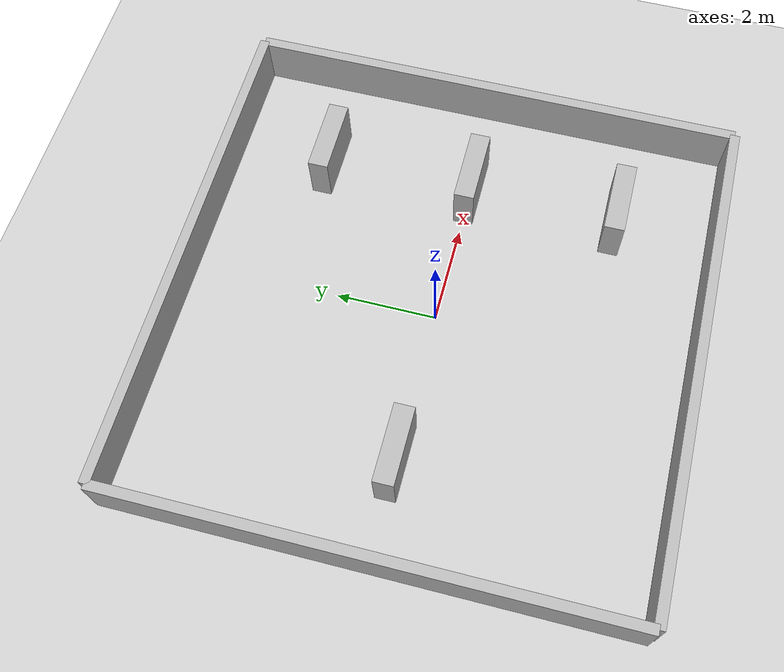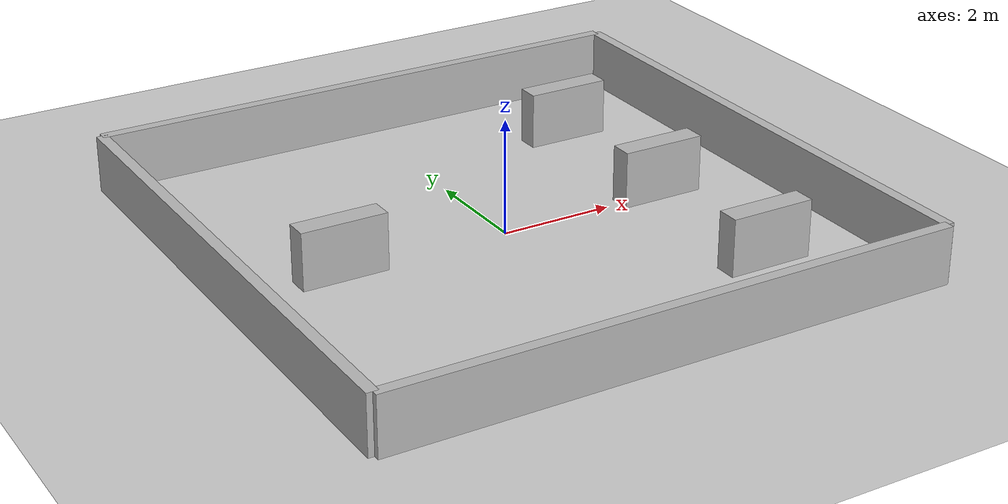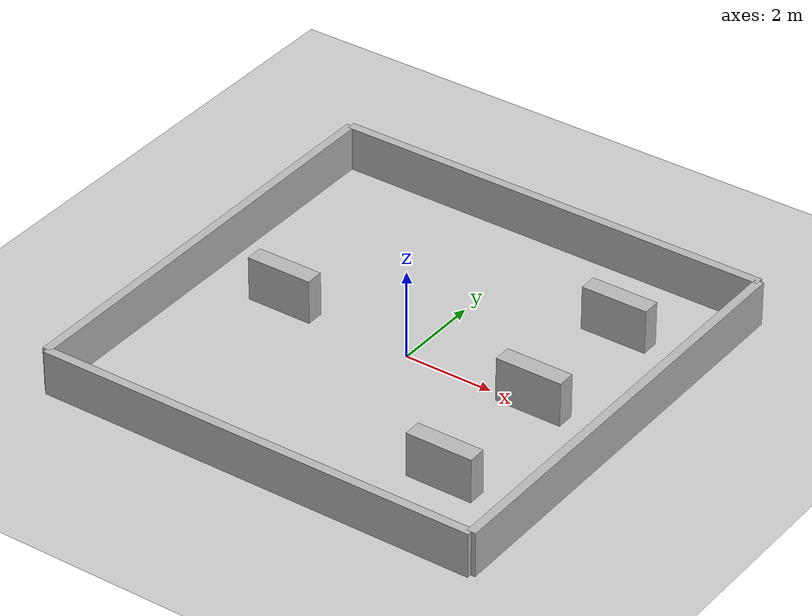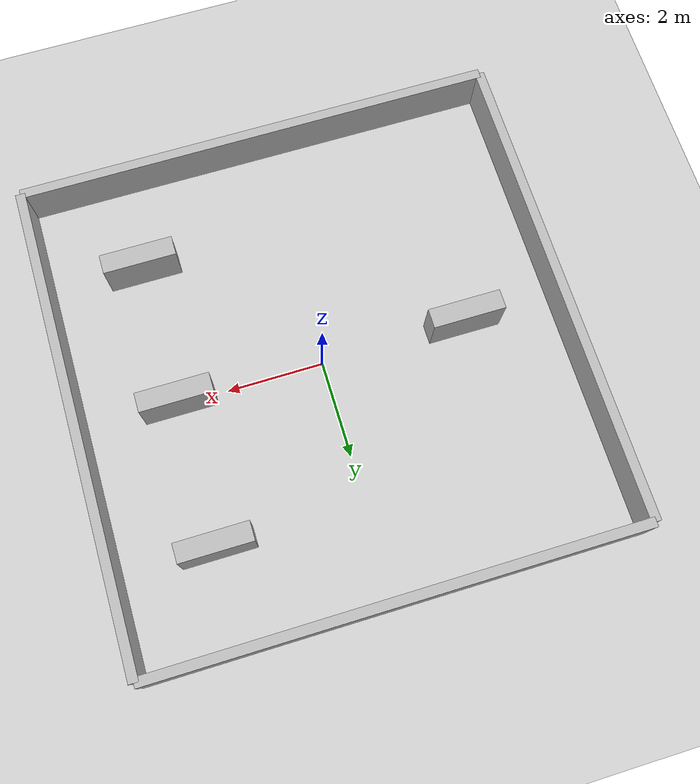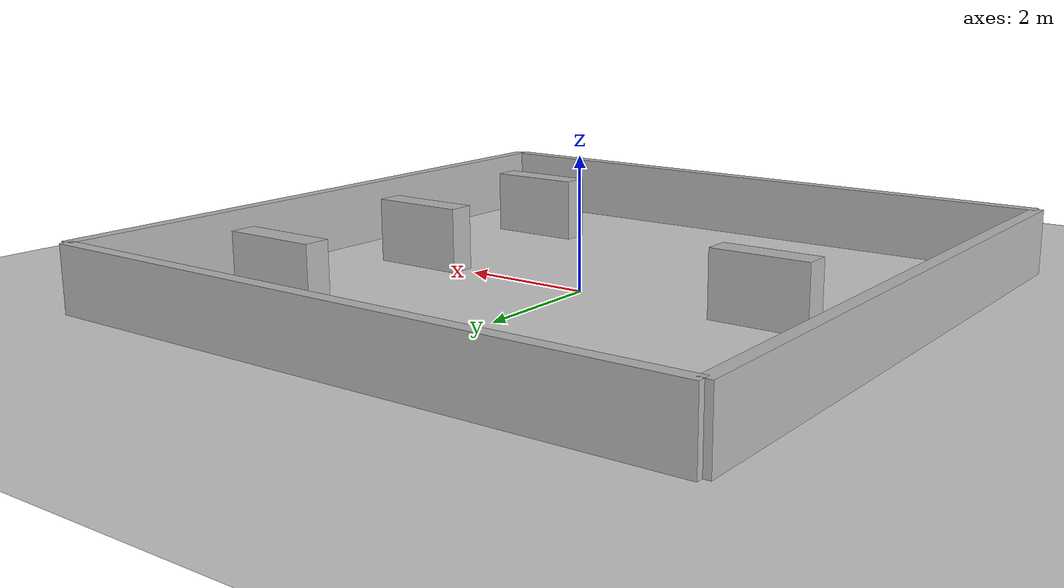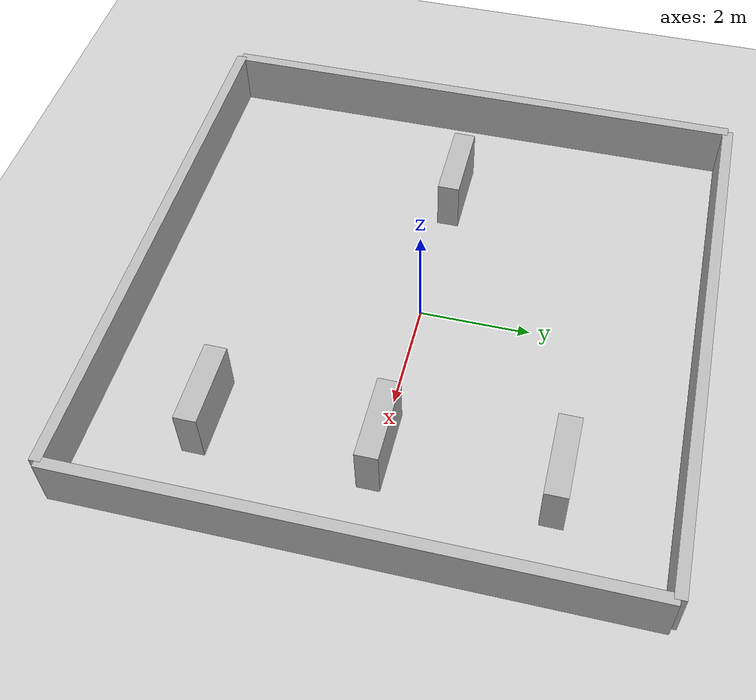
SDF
<?xml version="1.0"?>
<sdf version="1.6">
  <world name="utility_store">
    <include>
      <uri>model://ground_plane</uri>
    </include>
    <include>
      <uri>model://sun</uri>
    </include>

    <!-- Outer walls -->
    <model name="wall_north">
      <static>true</static>
      <pose>0 5 0.5 0 0 0</pose>
      <link name="link">
        <collision name="collision">
          <geometry><box><size>10 0.2 1</size></box></geometry>
        </collision>
        <visual name="visual">
          <geometry><box><size>10 0.2 1</size></box></geometry>
        </visual>
      </link>
    </model>

    <model name="wall_south">
      <static>true</static>
      <pose>0 -5 0.5 0 0 0</pose>
      <link name="link">
        <collision name="collision">
          <geometry><box><size>10 0.2 1</size></box></geometry>
        </collision>
        <visual name="visual">
          <geometry><box><size>10 0.2 1</size></box></geometry>
        </visual>
      </link>
    </model>

    <model name="wall_east">
      <static>true</static>
      <pose>5 0 0.5 0 0 0</pose>
      <link name="link">
        <collision name="collision">
          <geometry><box><size>0.2 10 1</size></box></geometry>
        </collision>
        <visual name="visual">
          <geometry><box><size>0.2 10 1</size></box></geometry>
        </visual>
      </link>
    </model>

    <model name="wall_west">
      <static>true</static>
      <pose>-5 0 0.5 0 0 0</pose>
      <link name="link">
        <collision name="collision">
          <geometry><box><size>0.2 10 1</size></box></geometry>
        </collision>
        <visual name="visual">
          <geometry><box><size>0.2 10 1</size></box></geometry>
        </visual>
      </link>
    </model>

    <!-- Shelf Station 1 - Biscuits -->
    <model name="shelf_biscuits">
      <static>true</static>
      <pose>3 3 0.5 0 0 0</pose>
      <link name="link">
        <collision name="collision">
          <geometry><box><size>1.5 0.4 1</size></box></geometry>
        </collision>
        <visual name="visual">
          <geometry><box><size>1.5 0.4 1</size></box></geometry>
        </visual>
      </link>
    </model>

    <!-- Shelf Station 2 - Beverages -->
    <model name="shelf_beverages">
      <static>true</static>
      <pose>3 0 0.5 0 0 0</pose>
      <link name="link">
        <collision name="collision">
          <geometry><box><size>1.5 0.4 1</size></box></geometry>
        </collision>
        <visual name="visual">
          <geometry><box><size>1.5 0.4 1</size></box></geometry>
        </visual>
      </link>
    </model>

    <!-- Shelf Station 3 - Snacks -->
    <model name="shelf_snacks">
      <static>true</static>
      <pose>3 -3 0.5 0 0 0</pose>
      <link name="link">
        <collision name="collision">
          <geometry><box><size>1.5 0.4 1</size></box></geometry>
        </collision>
        <visual name="visual">
          <geometry><box><size>1.5 0.4 1</size></box></geometry>
        </visual>
      </link>
    </model>

    <!-- Customer Pickup Counter -->
    <model name="pickup_counter">
      <static>true</static>
      <pose>-3 0 0.5 0 0 0</pose>
      <link name="link">
        <collision name="collision">
          <geometry><box><size>1.5 0.4 1</size></box></geometry>
        </collision>
        <visual name="visual">
          <geometry><box><size>1.5 0.4 1</size></box></geometry>
        </visual>
      </link>
    </model>

  </world>
</sdf>
